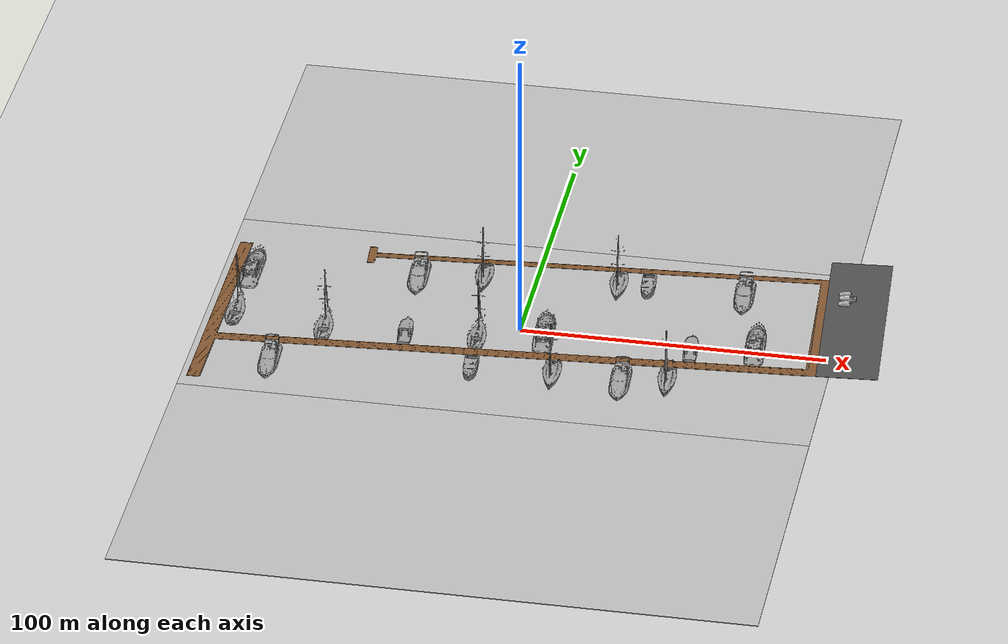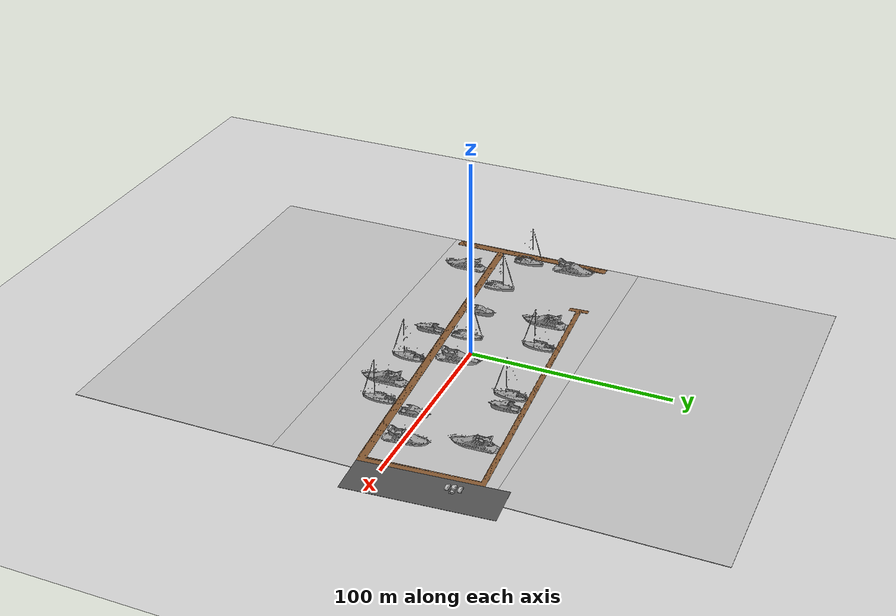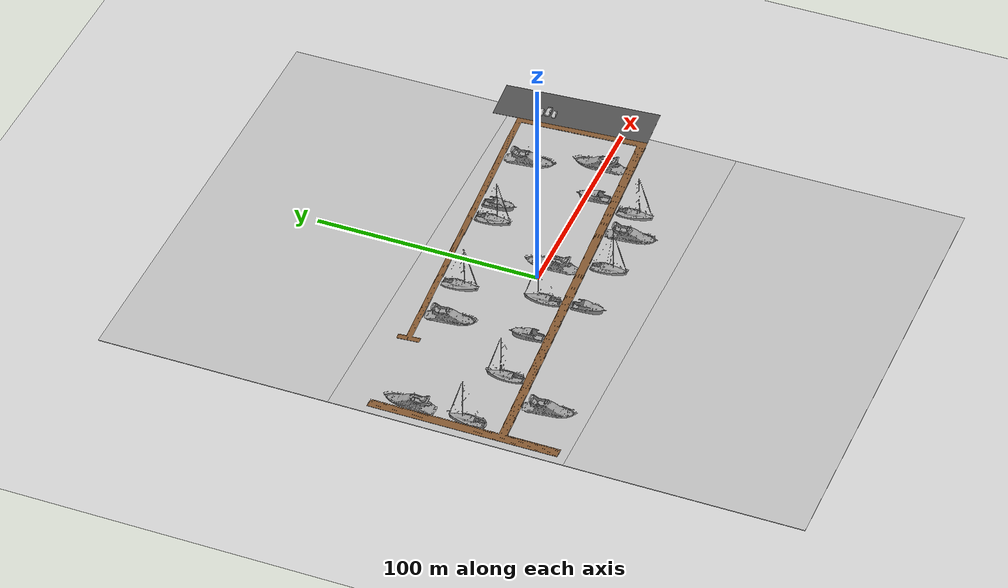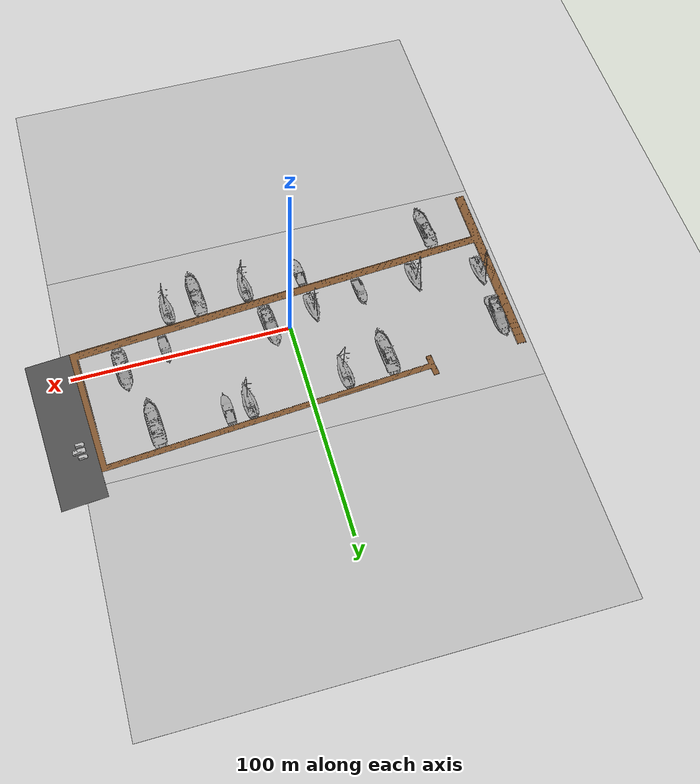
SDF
<sdf version="1.7">
 <world name="default">
  <model name="ground_plane">
   <static>1</static>
   <link name="link">
    <collision name="collision">
     <geometry><plane><normal>0 0 1</normal><size>100 100</size></plane></geometry>
     <surface><friction><ode><mu>100</mu><mu2>50</mu2></ode></friction></surface>
    </collision>
    <visual name="visual">
     <cast_shadows>0</cast_shadows>
     <geometry><plane><normal>0 0 1</normal><size>100 100</size></plane></geometry>
     <material>
      <script><uri>file://media/materials/scripts/gazebo.material</uri><name>Gazebo/Grey</name></script>
     </material>
    </visual>
   </link>
  </model>
  <gravity>0 0 -9.8</gravity>
  <magnetic_field>6e-06 2.3e-05 -4.2e-05</magnetic_field>
  <atmosphere type="adiabatic"/>
  <physics type="ode">
   <max_step_size>0.001</max_step_size>
   <real_time_factor>1</real_time_factor>
   <real_time_update_rate>1000</real_time_update_rate>
  </physics>
  <scene><ambient>0.4 0.4 0.4 1</ambient><background>0.7 0.7 0.7 1</background><shadows>0</shadows></scene>
  <audio><device>default</device></audio>
  <spherical_coordinates>
   <surface_model>EARTH_WGS84</surface_model>
   <latitude_deg>0</latitude_deg>
   <longitude_deg>0</longitude_deg>
   <elevation>0</elevation>
   <heading_deg>0</heading_deg>
  </spherical_coordinates>
  <model name="sea_plane_final">
   <link name="link">
    <inertial>
     <mass>5.27875e+06</mass>
     <inertia>
      <ixx>4.66688e+09</ixx>
      <ixy>0</ixy>
      <ixz>0</ixz>
      <iyy>1.84866e+10</iyy>
      <iyz>0</iyz>
      <izz>2.31535e+10</izz>
     </inertia>
    </inertial>
    <visual name="visual">
     <cast_shadows>0</cast_shadows>
     <geometry><box><size>205 103 0.25</size></box></geometry>
     <material>
      <script>
       <uri>model://sea_plane/materials/scripts</uri>
       <uri>model://sea_plane/materials/textures</uri>
       <name>vrc/sea</name>
      </script>
      <shader type="pixel"><normal_map>__default__</normal_map></shader>
     </material>
    </visual>
    <collision name="collision">
     <geometry><box><size>205 103 0.25</size></box></geometry>
     <surface>
      <friction>
       <ode><mu>1</mu><mu2>1</mu2><fdir1>0 0 0</fdir1><slip1>0</slip1><slip2>0</slip2></ode>
       <torsional>
        <coefficient>1</coefficient>
        <patch_radius>0</patch_radius>
        <surface_radius>0</surface_radius>
        <use_patch_radius>1</use_patch_radius>
        <ode><slip>0</slip></ode>
       </torsional>
      </friction>
      <bounce><restitution_coefficient>0</restitution_coefficient><threshold>1e+06</threshold></bounce>
      <contact>
       <collide_without_contact>0</collide_without_contact>
       <collide_without_contact_bitmask>1</collide_without_contact_bitmask>
       <collide_bitmask>1</collide_bitmask>
       <ode>
        <soft_cfm>0</soft_cfm>
        <soft_erp>0.2</soft_erp>
        <kp>1e+13</kp>
        <kd>1</kd>
        <max_vel>0.01</max_vel>
        <min_depth>0</min_depth>
       </ode>
       <bullet>
        <split_impulse>1</split_impulse>
        <split_impulse_penetration_threshold>-0.01</split_impulse_penetration_threshold>
        <soft_cfm>0</soft_cfm>
        <soft_erp>0.2</soft_erp>
        <kp>1e+13</kp>
        <kd>1</kd>
       </bullet>
      </contact>
     </surface>
    </collision>
   </link>
   <static>1</static>
   <pose>0.008702 -0.043529 0 0 -0 0</pose>
  </model>
  <light name="sun" type="directional">
   <pose>-37.2448 -35.311 10 0 -0 0</pose>
   <diffuse>0.8 0.8 0.8 1</diffuse>
   <specular>0.2 0.2 0.2 1</specular>
   <attenuation>
    <range>1000</range>
    <constant>0.9</constant>
    <linear>0.01</linear>
    <quadratic>0.001</quadratic>
   </attenuation>
   <direction>-0.5 0.1 -0.9</direction>
   <spot><inner_angle>0</inner_angle><outer_angle>0</outer_angle><falloff>0</falloff></spot>
  </light>
  <light name="sun_clone" type="directional">
   <pose>31.987 4.34201 10 0 -0 0</pose>
   <diffuse>0.8 0.8 0.8 1</diffuse>
   <specular>0.2 0.2 0.2 1</specular>
   <direction>-0.483368 0.096674 -0.870063</direction>
   <attenuation>
    <range>1000</range>
    <constant>0.9</constant>
    <linear>0.01</linear>
    <quadratic>0.001</quadratic>
   </attenuation>
   <spot><inner_angle>0</inner_angle><outer_angle>0</outer_angle><falloff>0</falloff></spot>
  </light>
  <model name="yacht_1">
   <static>1</static>
   <link name="link">
    <visual name="visual">
     <geometry>
      <mesh>
       <uri>/home/albert/marinero_ws/src/marinero_simulations/models/yacht_1/meshes/Yacht_v2.dae</uri>
       <scale>2.5 2.5 2.5</scale>
      </mesh>
     </geometry>
     <material>
      <script><uri>file://media/materials/scripts/gazebo.material</uri><name>Gazebo/Grey</name></script>
     </material>
    </visual>
    <collision name="collision">
     <geometry>
      <mesh>
       <uri>/home/albert/marinero_ws/src/marinero_simulations/models/yacht_1/meshes/Yacht_v2.dae</uri>
       <scale>2.5 2.5 2.5</scale>
      </mesh>
     </geometry>
    </collision>
   </link>
   <pose>-38.135 24.6235 0.645733 0 -0 0.06455</pose>
  </model>
  <model name="yacht_1_0">
   <static>1</static>
   <link name="link">
    <visual name="visual">
     <geometry>
      <mesh>
       <uri>/home/albert/marinero_ws/src/marinero_simulations/models/yacht_2/meshes/Yatch.stl</uri>
       <scale>5 5 5</scale>
      </mesh>
     </geometry>
     <material>
      <script><uri>file://media/materials/scripts/gazebo.material</uri><name>Gazebo/Grey</name></script>
     </material>
    </visual>
    <collision name="collision">
     <geometry>
      <mesh>
       <uri>/home/albert/marinero_ws/src/marinero_simulations/models/yacht_2/meshes/Yatch.stl</uri>
       <scale>5 5 5</scale>
      </mesh>
     </geometry>
    </collision>
   </link>
   <pose>-35.9314 -9.04549 0 0 -0 0.061909</pose>
  </model>
  <model name="yacht_1_0_clone">
   <static>1</static>
   <link name="link">
    <visual name="visual">
     <geometry>
      <mesh>
       <uri>/home/albert/marinero_ws/src/marinero_simulations/models/yacht_2/meshes/Yatch.stl</uri>
       <scale>5 5 5</scale>
      </mesh>
     </geometry>
     <material>
      <script><uri>file://media/materials/scripts/gazebo.material</uri><name>Gazebo/Grey</name></script>
     </material>
    </visual>
    <collision name="collision">
     <geometry>
      <mesh>
       <uri>/home/albert/marinero_ws/src/marinero_simulations/models/yacht_2/meshes/Yatch.stl</uri>
       <scale>5 5 5</scale>
      </mesh>
     </geometry>
    </collision>
   </link>
   <pose>36.707 31.4131 0 0 0 -3.07578</pose>
  </model>
  <model name="yacht_1_0_clone_clone">
   <static>1</static>
   <link name="link">
    <visual name="visual">
     <geometry>
      <mesh>
       <uri>/home/albert/marinero_ws/src/marinero_simulations/models/yacht_2/meshes/Yatch.stl</uri>
       <scale>5 5 5</scale>
      </mesh>
     </geometry>
     <material>
      <script><uri>file://media/materials/scripts/gazebo.material</uri><name>Gazebo/Grey</name></script>
     </material>
    </visual>
    <collision name="collision">
     <geometry>
      <mesh>
       <uri>/home/albert/marinero_ws/src/marinero_simulations/models/yacht_2/meshes/Yatch.stl</uri>
       <scale>5 5 5</scale>
      </mesh>
     </geometry>
    </collision>
   </link>
   <pose>56.5409 -3.05546 0 0 -0 0.069781</pose>
  </model>
  <model name="yacht_1_clone">
   <static>1</static>
   <link name="link">
    <visual name="visual">
     <geometry>
      <mesh>
       <uri>/home/albert/marinero_ws/src/marinero_simulations/models/yacht_1/meshes/Yacht_v2.dae</uri>
       <scale>2.5 2.5 2.5</scale>
      </mesh>
     </geometry>
     <material>
      <script><uri>file://media/materials/scripts/gazebo.material</uri><name>Gazebo/Grey</name></script>
     </material>
    </visual>
    <collision name="collision">
     <geometry>
      <mesh>
       <uri>/home/albert/marinero_ws/src/marinero_simulations/models/yacht_1/meshes/Yacht_v2.dae</uri>
       <scale>2.5 2.5 2.5</scale>
      </mesh>
     </geometry>
    </collision>
   </link>
   <pose>68.476 31.5545 0.645733 0 -0 0.06455</pose>
  </model>
  <model name="yacht_1_clone_0">
   <static>1</static>
   <link name="link">
    <visual name="visual">
     <geometry>
      <mesh>
       <uri>/home/albert/marinero_ws/src/marinero_simulations/models/yacht_1/meshes/Yacht_v2.dae</uri>
       <scale>2.5 2.5 2.5</scale>
      </mesh>
     </geometry>
     <material>
      <script><uri>file://media/materials/scripts/gazebo.material</uri><name>Gazebo/Grey</name></script>
     </material>
    </visual>
    <collision name="collision">
     <geometry>
      <mesh>
       <uri>/home/albert/marinero_ws/src/marinero_simulations/models/yacht_1/meshes/Yacht_v2.dae</uri>
       <scale>2.5 2.5 2.5</scale>
      </mesh>
     </geometry>
    </collision>
   </link>
   <pose>76.9584 0.490142 0.645733 0 0 -3.07126</pose>
  </model>
  <model name="yacht_1_clone_0_clone">
   <static>1</static>
   <link name="link">
    <visual name="visual">
     <geometry>
      <mesh>
       <uri>/home/albert/marinero_ws/src/marinero_simulations/models/yacht_1/meshes/Yacht_v2.dae</uri>
       <scale>2.5 2.5 2.5</scale>
      </mesh>
     </geometry>
     <material>
      <script><uri>file://media/materials/scripts/gazebo.material</uri><name>Gazebo/Grey</name></script>
     </material>
    </visual>
    <collision name="collision">
     <geometry>
      <mesh>
       <uri>/home/albert/marinero_ws/src/marinero_simulations/models/yacht_1/meshes/Yacht_v2.dae</uri>
       <scale>2.5 2.5 2.5</scale>
      </mesh>
     </geometry>
    </collision>
   </link>
   <pose>8.66473 -3.95833 0.645733 0 0 -3.07126</pose>
  </model>
  <model name="yacht_1_clone_clone">
   <static>1</static>
   <link name="link">
    <visual name="visual">
     <geometry>
      <mesh>
       <uri>/home/albert/marinero_ws/src/marinero_simulations/models/yacht_1/meshes/Yacht_v2.dae</uri>
       <scale>2.5 2.5 2.5</scale>
      </mesh>
     </geometry>
     <material>
      <script><uri>file://media/materials/scripts/gazebo.material</uri><name>Gazebo/Grey</name></script>
     </material>
    </visual>
    <collision name="collision">
     <geometry>
      <mesh>
       <uri>/home/albert/marinero_ws/src/marinero_simulations/models/yacht_1/meshes/Yacht_v2.dae</uri>
       <scale>2.5 2.5 2.5</scale>
      </mesh>
     </geometry>
    </collision>
   </link>
   <pose>37.5035 -26.7213 0.645733 0 -0 0.06455</pose>
  </model>
  <model name="yacht_1_0_clone_clone_0">
   <static>1</static>
   <link name="link">
    <visual name="visual">
     <geometry>
      <mesh>
       <uri>/home/albert/marinero_ws/src/marinero_simulations/models/yacht_2/meshes/Yatch.stl</uri>
       <scale>5 5 5</scale>
      </mesh>
     </geometry>
     <material>
      <script><uri>file://media/materials/scripts/gazebo.material</uri><name>Gazebo/Grey</name></script>
     </material>
    </visual>
    <collision name="collision">
     <geometry>
      <mesh>
       <uri>/home/albert/marinero_ws/src/marinero_simulations/models/yacht_2/meshes/Yatch.stl</uri>
       <scale>5 5 5</scale>
      </mesh>
     </geometry>
    </collision>
   </link>
   <pose>-11.1899 -27.5731 0 0 0 -3.07578</pose>
  </model>
  <model name="sailboat_1">
   <static>1</static>
   <link name="link">
    <visual name="visual">
     <pose>0 0 10.5 1.57 -0 0</pose>
     <geometry>
      <mesh>
       <uri>/home/albert/marinero_ws/src/marinero_simulations/models/sailboat_1/meshes/Sailboat.stl</uri>
       <scale>1800 1800 1800</scale>
      </mesh>
     </geometry>
     <material>
      <script><uri>file://media/materials/scripts/gazebo.material</uri><name>Gazebo/Grey</name></script>
     </material>
    </visual>
    <collision name="collision">
     <pose>0 0 10.5 1.57 -0 0</pose>
     <geometry>
      <mesh>
       <uri>/home/albert/marinero_ws/src/marinero_simulations/models/sailboat_1/meshes/Sailboat.stl</uri>
       <scale>1800 1800 1800</scale>
      </mesh>
     </geometry>
    </collision>
   </link>
   <pose>-62.4667 -10.8359 -0.195807 0 0 -1.52083</pose>
  </model>
  <model name="sailboat_1_clone">
   <static>1</static>
   <link name="link">
    <visual name="visual">
     <pose>0 0 10.5 1.57 -0 0</pose>
     <geometry>
      <mesh>
       <uri>/home/albert/marinero_ws/src/marinero_simulations/models/sailboat_1/meshes/Sailboat.stl</uri>
       <scale>1800 1800 1800</scale>
      </mesh>
     </geometry>
     <material>
      <script><uri>file://media/materials/scripts/gazebo.material</uri><name>Gazebo/Grey</name></script>
     </material>
    </visual>
    <collision name="collision">
     <pose>0 0 10.5 1.57 -0 0</pose>
     <geometry>
      <mesh>
       <uri>/home/albert/marinero_ws/src/marinero_simulations/models/sailboat_1/meshes/Sailboat.stl</uri>
       <scale>1800 1800 1800</scale>
      </mesh>
     </geometry>
    </collision>
   </link>
   <pose>-12.6199 -7.59111 -0.195807 0 0 -1.52083</pose>
  </model>
  <model name="sailboat_1_clone_0">
   <static>1</static>
   <link name="link">
    <visual name="visual">
     <pose>0 0 10.5 1.57 -0 0</pose>
     <geometry>
      <mesh>
       <uri>/home/albert/marinero_ws/src/marinero_simulations/models/sailboat_1/meshes/Sailboat.stl</uri>
       <scale>1800 1800 1800</scale>
      </mesh>
     </geometry>
     <material>
      <script><uri>file://media/materials/scripts/gazebo.material</uri><name>Gazebo/Grey</name></script>
     </material>
    </visual>
    <collision name="collision">
     <pose>0 0 10.5 1.57 -0 0</pose>
     <geometry>
      <mesh>
       <uri>/home/albert/marinero_ws/src/marinero_simulations/models/sailboat_1/meshes/Sailboat.stl</uri>
       <scale>1800 1800 1800</scale>
      </mesh>
     </geometry>
    </collision>
   </link>
   <pose>-17.2285 28.2314 -0.195807 0 -0 1.63495</pose>
  </model>
  <model name="sailboat_1_clone_0_clone">
   <static>1</static>
   <link name="link">
    <visual name="visual">
     <pose>0 0 10.5 1.57 -0 0</pose>
     <geometry>
      <mesh>
       <uri>/home/albert/marinero_ws/src/marinero_simulations/models/sailboat_1/meshes/Sailboat.stl</uri>
       <scale>1800 1800 1800</scale>
      </mesh>
     </geometry>
     <material>
      <script><uri>file://media/materials/scripts/gazebo.material</uri><name>Gazebo/Grey</name></script>
     </material>
    </visual>
    <collision name="collision">
     <pose>0 0 10.5 1.57 -0 0</pose>
     <geometry>
      <mesh>
       <uri>/home/albert/marinero_ws/src/marinero_simulations/models/sailboat_1/meshes/Sailboat.stl</uri>
       <scale>1800 1800 1800</scale>
      </mesh>
     </geometry>
    </collision>
   </link>
   <pose>26.8856 31.1448 -0.195807 0 -0 1.63495</pose>
  </model>
  <model name="sailboat_1_clone_0_clone_0">
   <static>1</static>
   <link name="link">
    <visual name="visual">
     <pose>0 0 10.5 1.57 -0 0</pose>
     <geometry>
      <mesh>
       <uri>/home/albert/marinero_ws/src/marinero_simulations/models/sailboat_1/meshes/Sailboat.stl</uri>
       <scale>1800 1800 1800</scale>
      </mesh>
     </geometry>
     <material>
      <script><uri>file://media/materials/scripts/gazebo.material</uri><name>Gazebo/Grey</name></script>
     </material>
    </visual>
    <collision name="collision">
     <pose>0 0 10.5 1.57 -0 0</pose>
     <geometry>
      <mesh>
       <uri>/home/albert/marinero_ws/src/marinero_simulations/models/sailboat_1/meshes/Sailboat.stl</uri>
       <scale>1800 1800 1800</scale>
      </mesh>
     </geometry>
    </collision>
   </link>
   <pose>14.9915 -25.9978 -0.195807 0 -0 1.63495</pose>
  </model>
  <model name="yacht_1_clone_1">
   <static>1</static>
   <link name="link">
    <visual name="visual">
     <geometry>
      <mesh>
       <uri>/home/albert/marinero_ws/src/marinero_simulations/models/yacht_1/meshes/Yacht_v2.dae</uri>
       <scale>2.5 2.5 2.5</scale>
      </mesh>
     </geometry>
     <material>
      <script><uri>file://media/materials/scripts/gazebo.material</uri><name>Gazebo/Grey</name></script>
     </material>
    </visual>
    <collision name="collision">
     <geometry>
      <mesh>
       <uri>/home/albert/marinero_ws/src/marinero_simulations/models/yacht_1/meshes/Yacht_v2.dae</uri>
       <scale>2.5 2.5 2.5</scale>
      </mesh>
     </geometry>
    </collision>
   </link>
   <pose>-92.3148 18.0712 0.645733 0 -0 -3.1415</pose>
  </model>
  <model name="sailboat_1_clone_0_clone_1">
   <static>1</static>
   <link name="link">
    <visual name="visual">
     <pose>0 0 10.5 1.57 -0 0</pose>
     <geometry>
      <mesh>
       <uri>/home/albert/marinero_ws/src/marinero_simulations/models/sailboat_1/meshes/Sailboat.stl</uri>
       <scale>1800 1800 1800</scale>
      </mesh>
     </geometry>
     <material>
      <script><uri>file://media/materials/scripts/gazebo.material</uri><name>Gazebo/Grey</name></script>
     </material>
    </visual>
    <collision name="collision">
     <pose>0 0 10.5 1.57 -0 0</pose>
     <geometry>
      <mesh>
       <uri>/home/albert/marinero_ws/src/marinero_simulations/models/sailboat_1/meshes/Sailboat.stl</uri>
       <scale>1800 1800 1800</scale>
      </mesh>
     </geometry>
    </collision>
   </link>
   <pose>52.0043 -23.5776 -0.195807 0 -0 1.63495</pose>
  </model>
  <model name="sailboat_1_clone_1">
   <static>1</static>
   <link name="link">
    <visual name="visual">
     <pose>0 0 10.5 1.57 -0 0</pose>
     <geometry>
      <mesh>
       <uri>/home/albert/marinero_ws/src/marinero_simulations/models/sailboat_1/meshes/Sailboat.stl</uri>
       <scale>1800 1800 1800</scale>
      </mesh>
     </geometry>
     <material>
      <script><uri>file://media/materials/scripts/gazebo.material</uri><name>Gazebo/Grey</name></script>
     </material>
    </visual>
    <collision name="collision">
     <pose>0 0 10.5 1.57 -0 0</pose>
     <geometry>
      <mesh>
       <uri>/home/albert/marinero_ws/src/marinero_simulations/models/sailboat_1/meshes/Sailboat.stl</uri>
       <scale>1800 1800 1800</scale>
      </mesh>
     </geometry>
    </collision>
   </link>
   <pose>-92.6321 -6.19427 -0.195807 0 0 -1.5691</pose>
  </model>
  <model name="pickup">
   <static>1</static>
   <link name="link">
    <collision name="collision">
     <pose>0 0 0 0 0 -1.5708</pose>
     <geometry><mesh><uri>model://pickup/meshes/pickup.dae</uri></mesh></geometry>
    </collision>
    <visual name="visual">
     <pose>0 0 0 0 0 -1.5708</pose>
     <geometry><mesh><uri>model://pickup/meshes/pickup.dae</uri></mesh></geometry>
    </visual>
   </link>
   <pose>101.777 34.9538 1.265 0 0 -3.06902</pose>
  </model>
  <model name="Marina_dokovi">
   <link name="link">
    <inertial>
     <mass>100000</mass>
     <inertia><ixx>0</ixx><ixy>0</ixy><ixz>0</ixz><iyy>0</iyy><iyz>0</iyz><izz>0</izz></inertia>
    </inertial>
    <visual name="visual">
     <geometry>
      <mesh>
       <uri>/home/albert/marinero_ws/src/marinero_simulations/models/Marina_dokovi/meshes/Marina_bez_razmaka_1m.dae</uri>
       <scale>1 1 1</scale>
      </mesh>
     </geometry>
     <material>
      <script><uri>file://media/materials/scripts/gazebo.material</uri><name>Gazebo/Brown</name></script>
      <ambient>0.278 0.129 0.02 1</ambient>
      <diffuse>0.278 0.129 0.02 1</diffuse>
      <specular>0.278 0.129 0.02 1</specular>
      <emissive>0 0 0 1</emissive>
      <shader type="pixel"><normal_map>__default__</normal_map></shader>
     </material>
    </visual>
    <collision name="collision">
     <geometry>
      <mesh>
       <uri>/home/albert/marinero_ws/src/marinero_simulations/models/Marina_dokovi/meshes/Marina_bez_razmaka_1m.dae</uri>
       <scale>1 1 1</scale>
      </mesh>
     </geometry>
     <surface>
      <friction>
       <ode><mu>0.9</mu><mu2>0.9</mu2><fdir1>0 0 0</fdir1><slip1>0.001</slip1><slip2>1e-05</slip2></ode>
       <torsional>
        <coefficient>1</coefficient>
        <patch_radius>0</patch_radius>
        <surface_radius>0</surface_radius>
        <use_patch_radius>1</use_patch_radius>
        <ode><slip>0</slip></ode>
       </torsional>
      </friction>
      <bounce><restitution_coefficient>0</restitution_coefficient><threshold>1000</threshold></bounce>
      <contact>
       <collide_without_contact>0</collide_without_contact>
       <collide_without_contact_bitmask>0</collide_without_contact_bitmask>
       <collide_bitmask>1</collide_bitmask>
       <ode>
        <soft_cfm>0</soft_cfm>
        <soft_erp>0.2</soft_erp>
        <kp>1e+11</kp>
        <kd>100</kd>
        <max_vel>10</max_vel>
        <min_depth>0.001</min_depth>
       </ode>
       <bullet>
        <split_impulse>1</split_impulse>
        <split_impulse_penetration_threshold>-0.01</split_impulse_penetration_threshold>
        <soft_cfm>0</soft_cfm>
        <soft_erp>0.2</soft_erp>
        <kp>1e+11</kp>
        <kd>100</kd>
       </bullet>
      </contact>
     </surface>
    </collision>
   </link>
   <static>1</static>
   <pose>-100 -48 1.25 0 -0 0</pose>
  </model>
  <model name="asphalt_plane">
   <link name="link">
    <inertial>
     <mass>1</mass>
     <inertia><ixx>1</ixx><ixy>0</ixy><ixz>0</ixz><iyy>1</iyy><iyz>0</iyz><izz>1</izz></inertia>
    </inertial>
    <visual name="visual">
     <cast_shadows>0</cast_shadows>
     <geometry><box><size>70 20 0.1</size></box></geometry>
     <material>
      <script>
       <uri>model://asphalt_plane/materials/scripts</uri>
       <uri>model://asphalt_plane/materials/textures</uri>
       <name>vrc/asphalt</name>
      </script>
      <shader type="pixel"><normal_map>__default__</normal_map></shader>
      <ambient>0.5 0.5 0.5 1</ambient>
      <diffuse>0.5 0.5 0.5 1</diffuse>
      <specular>0.2 0.2 0.2 1</specular>
      <emissive>0 0 0 1</emissive>
     </material>
    </visual>
    <collision name="collision">
     <geometry><box><size>70 20 0.1</size></box></geometry>
     <surface>
      <friction>
       <ode><mu>1</mu><mu2>1</mu2><fdir1>0 0 0</fdir1><slip1>0.001</slip1><slip2>1e-05</slip2></ode>
       <torsional>
        <coefficient>1</coefficient>
        <patch_radius>0</patch_radius>
        <surface_radius>0</surface_radius>
        <use_patch_radius>1</use_patch_radius>
        <ode><slip>0</slip></ode>
       </torsional>
      </friction>
      <bounce><restitution_coefficient>0</restitution_coefficient><threshold>1e+06</threshold></bounce>
      <contact>
       <collide_without_contact>0</collide_without_contact>
       <collide_without_contact_bitmask>1</collide_without_contact_bitmask>
       <collide_bitmask>1</collide_bitmask>
       <ode>
        <soft_cfm>0</soft_cfm>
        <soft_erp>0.2</soft_erp>
        <kp>1e+13</kp>
        <kd>1</kd>
        <max_vel>0.01</max_vel>
        <min_depth>0</min_depth>
       </ode>
       <bullet>
        <split_impulse>1</split_impulse>
        <split_impulse_penetration_threshold>-0.01</split_impulse_penetration_threshold>
        <soft_cfm>0</soft_cfm>
        <soft_erp>0.2</soft_erp>
        <kp>1e+13</kp>
        <kd>1</kd>
       </bullet>
      </contact>
     </surface>
    </collision>
   </link>
   <static>1</static>
   <pose>105.941 23.4255 1.215 0 0 -1.4975</pose>
  </model>
  <model name="hatchback_blue">
   <static>1</static>
   <link name="link">
    <collision name="collision">
     <pose>0 0 0 0 -0 1.5708</pose>
     <geometry>
      <mesh><scale>0.0254 0.0254 0.0254</scale><uri>model://hatchback_blue/meshes/hatchback.obj</uri></mesh>
     </geometry>
    </collision>
    <visual name="visual">
     <pose>0 0 0 0 -0 1.5708</pose>
     <geometry>
      <mesh><scale>0.0254 0.0254 0.0254</scale><uri>model://hatchback_blue/meshes/hatchback.obj</uri></mesh>
     </geometry>
    </visual>
   </link>
   <pose>101.089 37.7784 1.265 0 0 -3.07318</pose>
  </model>
  <model name="hatchback_red">
   <static>1</static>
   <link name="link">
    <collision name="collision">
     <pose>0 0 0 0 -0 1.5708</pose>
     <geometry>
      <mesh><scale>0.0254 0.0254 0.0254</scale><uri>model://hatchback_red/meshes/hatchback.obj</uri></mesh>
     </geometry>
    </collision>
    <visual name="visual">
     <pose>0 0 0 0 -0 1.5708</pose>
     <geometry>
      <mesh><scale>0.0254 0.0254 0.0254</scale><uri>model://hatchback_red/meshes/hatchback.obj</uri></mesh>
     </geometry>
    </visual>
   </link>
   <pose>101.605 32.0699 1.265 0 0 -3.07312</pose>
  </model>
  <model name="yacht_1_clone_clone_0">
   <static>1</static>
   <link name="link">
    <visual name="visual">
     <geometry>
      <mesh>
       <uri>/home/albert/marinero_ws/src/marinero_simulations/models/yacht_1/meshes/Yacht_v2.dae</uri>
       <scale>2.5 2.5 2.5</scale>
      </mesh>
     </geometry>
     <material>
      <script><uri>file://media/materials/scripts/gazebo.material</uri><name>Gazebo/Grey</name></script>
     </material>
    </visual>
    <collision name="collision">
     <geometry>
      <mesh>
       <uri>/home/albert/marinero_ws/src/marinero_simulations/models/yacht_1/meshes/Yacht_v2.dae</uri>
       <scale>2.5 2.5 2.5</scale>
      </mesh>
     </geometry>
    </collision>
   </link>
   <pose>-75.7432 -33.8618 0.645733 0 -0 0.06455</pose>
  </model>
  <model name="sea_plane_final_clone">
   <link name="link">
    <inertial>
     <mass>5.27875e+06</mass>
     <inertia>
      <ixx>4.66688e+09</ixx>
      <ixy>0</ixy>
      <ixz>0</ixz>
      <iyy>1.84866e+10</iyy>
      <iyz>0</iyz>
      <izz>2.31535e+10</izz>
     </inertia>
    </inertial>
    <visual name="visual">
     <cast_shadows>0</cast_shadows>
     <geometry><box><size>205 103 0.25</size></box></geometry>
     <material>
      <script>
       <uri>model://sea_plane/materials/scripts</uri>
       <uri>model://sea_plane/materials/textures</uri>
       <name>vrc/sea</name>
      </script>
      <shader type="pixel"><normal_map>__default__</normal_map></shader>
     </material>
    </visual>
    <collision name="collision">
     <geometry><box><size>205 103 0.25</size></box></geometry>
     <surface>
      <friction>
       <ode><mu>1</mu><mu2>1</mu2><fdir1>0 0 0</fdir1><slip1>0</slip1><slip2>0</slip2></ode>
       <torsional>
        <coefficient>1</coefficient>
        <patch_radius>0</patch_radius>
        <surface_radius>0</surface_radius>
        <use_patch_radius>1</use_patch_radius>
        <ode><slip>0</slip></ode>
       </torsional>
      </friction>
      <bounce><restitution_coefficient>0</restitution_coefficient><threshold>1e+06</threshold></bounce>
      <contact>
       <collide_without_contact>0</collide_without_contact>
       <collide_without_contact_bitmask>1</collide_without_contact_bitmask>
       <collide_bitmask>1</collide_bitmask>
       <ode>
        <soft_cfm>0</soft_cfm>
        <soft_erp>0.2</soft_erp>
        <kp>1e+13</kp>
        <kd>1</kd>
        <max_vel>0.01</max_vel>
        <min_depth>0</min_depth>
       </ode>
       <bullet>
        <split_impulse>1</split_impulse>
        <split_impulse_penetration_threshold>-0.01</split_impulse_penetration_threshold>
        <soft_cfm>0</soft_cfm>
        <soft_erp>0.2</soft_erp>
        <kp>1e+13</kp>
        <kd>1</kd>
       </bullet>
      </contact>
     </surface>
    </collision>
   </link>
   <static>1</static>
   <pose>0.006413 102.924 0 0 -0 0</pose>
  </model>
  <model name="sea_plane_final_clone_clone">
   <link name="link">
    <inertial>
     <mass>5.27875e+06</mass>
     <inertia>
      <ixx>4.66688e+09</ixx>
      <ixy>0</ixy>
      <ixz>0</ixz>
      <iyy>1.84866e+10</iyy>
      <iyz>0</iyz>
      <izz>2.31535e+10</izz>
     </inertia>
    </inertial>
    <visual name="visual">
     <cast_shadows>0</cast_shadows>
     <geometry><box><size>205 103 0.25</size></box></geometry>
     <material>
      <script>
       <uri>model://sea_plane/materials/scripts</uri>
       <uri>model://sea_plane/materials/textures</uri>
       <name>vrc/sea</name>
      </script>
      <shader type="pixel"><normal_map>__default__</normal_map></shader>
     </material>
    </visual>
    <collision name="collision">
     <geometry><box><size>205 103 0.25</size></box></geometry>
     <surface>
      <friction>
       <ode><mu>1</mu><mu2>1</mu2><fdir1>0 0 0</fdir1><slip1>0</slip1><slip2>0</slip2></ode>
       <torsional>
        <coefficient>1</coefficient>
        <patch_radius>0</patch_radius>
        <surface_radius>0</surface_radius>
        <use_patch_radius>1</use_patch_radius>
        <ode><slip>0</slip></ode>
       </torsional>
      </friction>
      <bounce><restitution_coefficient>0</restitution_coefficient><threshold>1e+06</threshold></bounce>
      <contact>
       <collide_without_contact>0</collide_without_contact>
       <collide_without_contact_bitmask>1</collide_without_contact_bitmask>
       <collide_bitmask>1</collide_bitmask>
       <ode>
        <soft_cfm>0</soft_cfm>
        <soft_erp>0.2</soft_erp>
        <kp>1e+13</kp>
        <kd>1</kd>
        <max_vel>0.01</max_vel>
        <min_depth>0</min_depth>
       </ode>
       <bullet>
        <split_impulse>1</split_impulse>
        <split_impulse_penetration_threshold>-0.01</split_impulse_penetration_threshold>
        <soft_cfm>0</soft_cfm>
        <soft_erp>0.2</soft_erp>
        <kp>1e+13</kp>
        <kd>1</kd>
       </bullet>
      </contact>
     </surface>
    </collision>
   </link>
   <static>1</static>
   <pose>0.006697 -102.937 0 0 -0 0</pose>
  </model>
 </world>
</sdf>
